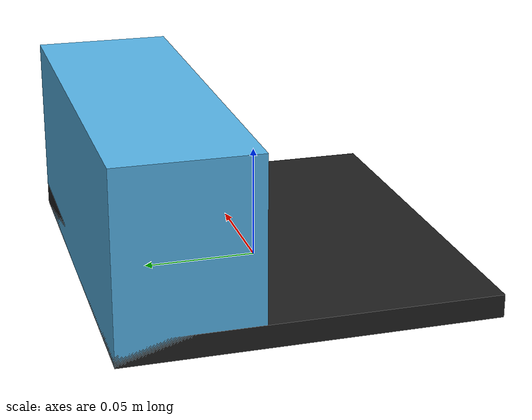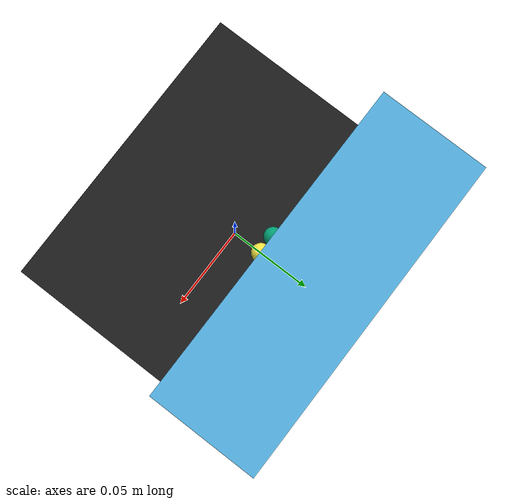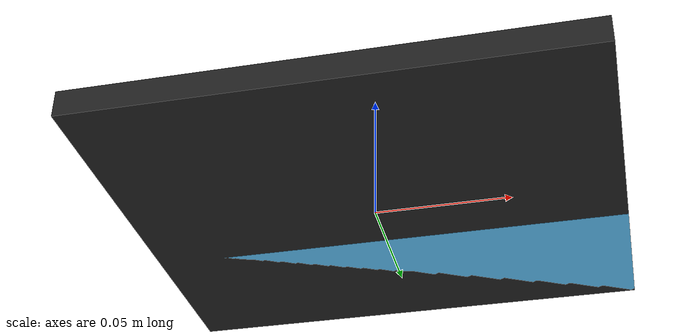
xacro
<?xml version="1.0"?>
<robot xmlns:controller="http://playerstage.sourceforge.net/gazebo/xmlschema/#controller"
    xmlns:interface="http://playerstage.sourceforge.net/gazebo/xmlschema/#interface"
    xmlns:sensor="http://playerstage.sourceforge.net/gazebo/xmlschema/#sensor"
    xmlns:xacro="http://ros.org/wiki/xacro" name="dock">

    <xacro:property name="DOCK_WIDTH" value="0.18" />
    <xacro:property name="DOCK_HEIGHT" value="0.08" />
    <xacro:property name="DOCK_THICKNESS" value="0.06" />
    <xacro:property name="DOCK_PLANE_L" value="0.16" />
    <xacro:property name="DOCK_PLANE_H" value="0.01" />
    <xacro:macro name="box_inertial" params="mass x y z">
        <inertial>
            <origin xyz="0 0 0" rpy="0 0 0"/>
            <mass value="${mass}"/>
            <inertia ixx="${mass * (x*x + z*z) / 12}" ixy="0.0" ixz="0.0" iyy="${mass * (z*z + y*y) / 12}" iyz="0.0" izz="${mass * (x*x + y*y) / 12}"/>
        </inertial>
    </xacro:macro>
    <link name="bottom">
        <xacro:box_inertial mass="0.5" x="${DOCK_WIDTH}" y="${DOCK_PLANE_L}" z="${DOCK_PLANE_H}"/>
        <collision>
            <origin xyz="0 0 ${DOCK_PLANE_H/2}" rpy="0 0 0" />
            <geometry>
                <box size="${DOCK_WIDTH} ${DOCK_PLANE_L} ${DOCK_PLANE_H}"/>
            </geometry>
        </collision>
        <visual>
            <origin xyz="0 0 ${DOCK_PLANE_H/2}" rpy="0 0 0" />
            <geometry>
                <box size="${DOCK_WIDTH} ${DOCK_PLANE_L} ${DOCK_PLANE_H}"/>
            </geometry>
        </visual>
    </link>
    <link name="base">
        <xacro:box_inertial mass="0.3" x="${DOCK_WIDTH}" y="${DOCK_THICKNESS}" z="${DOCK_HEIGHT}"/>
        <visual>
            <origin xyz="0.0 0.0 ${DOCK_HEIGHT/2}" rpy="0.0 0.0 0.0"/>
            <geometry>
                <box size="${DOCK_WIDTH} ${DOCK_THICKNESS} ${DOCK_HEIGHT}"/>
            </geometry>
        </visual>
        <collision>
            <origin xyz="0.0 0.0 ${DOCK_HEIGHT/2}" rpy="0.0 0.0 0.0"/>
            <geometry>
                <box size="${DOCK_WIDTH} ${DOCK_THICKNESS} ${DOCK_HEIGHT}"/>
            </geometry>
        </collision>
    </link>
    <link name="dock_left">
        <visual>
            <geometry>
                <sphere radius="0.005"/>
            </geometry>
        </visual>
    </link>
    <link name="dock_right">
        <visual>
            <geometry>
                <sphere radius="0.005"/>
            </geometry>
        </visual>
    </link>
    <joint name="jonit_left" type="fixed">
        <origin xyz="-0.005 -0.03 0.06" rpy="0.0 0.0 -1.57"/>
        <parent link="base"/>
        <child link="dock_left"/>
    </joint>
    <joint name="joint_right" type="fixed">
        <origin xyz="0.005 -0.03 0.06" rpy="0.0 0.0 -1.57"/>
        <parent link="base"/>
        <child link="dock_right"/>
    </joint>

    <gazebo reference="dock_left">
        <sensor name="ir_left" type="camera">
            <camera>
                <clip>
                    <near>0.02</near>
                    <far>2.5</far>
                </clip>
                <image>
                    <width>20</width>
                    <height>20</height>
                </image>
                <horizontal_fov>0.02</horizontal_fov>
                <aspect_ratio>1</aspect_ratio>
            </camera>
            <visualize>true</visualize>
            <always_on>true</always_on>
            <update_rate>10</update_rate>
            <topic>dockir/A3</topic>
            <plugin name="camera_l" filename="libgazebo_ros_camera.so">
                <alwaysOn>true</alwaysOn>
                <updateRate>10.0</updateRate>
                <cameraName>dock/left</cameraName>
                <imageTopicName>image_raw</imageTopicName>
                <cameraInfoTopicName>camera_info</cameraInfoTopicName>
                <frameName>dock_left</frameName>
            </plugin>
        </sensor>
    </gazebo>

    <gazebo reference="dock_right">
        <sensor name="ir_right" type="camera">
            <camera>
                <clip>
                    <near>0.02</near>
                    <far>2.5</far>
                </clip>
                <image>
                    <width>20</width>
                    <height>20</height>
                </image>
                <horizontal_fov>0.02</horizontal_fov>
                <aspect_ratio>1</aspect_ratio>
            </camera>
            <visualize>false</visualize>
            <always_on>true</always_on>
            <update_rate>10</update_rate>
            <topic>dockir/A3</topic>
            <plugin name="camera_r" filename="libgazebo_ros_camera.so">
                <alwaysOn>true</alwaysOn>
                <updateRate>10.0</updateRate>
                <cameraName>dock/right</cameraName>
                <imageTopicName>image_raw</imageTopicName>
                <cameraInfoTopicName>camera_info</cameraInfoTopicName>
                <frameName>dock_right</frameName>
            </plugin>
        </sensor>
    </gazebo>

    <gazebo reference="bottom">
        <mu1>20.0</mu1>
        <mu2>10.0</mu2>
        <kp>1000.0</kp>
        <kd>1.0</kd>
        <minDepth>0.001</minDepth>
        <material>Gazebo/Black</material>
    </gazebo>
    <joint name="joint_name" type="fixed">
        <origin xyz="0.0 ${DOCK_PLANE_L/2 - DOCK_THICKNESS/2} 0" rpy="0.0 0.0 0.0"/>
        <parent link="bottom"/>
        <child link="base"/>
    </joint>
</robot>
